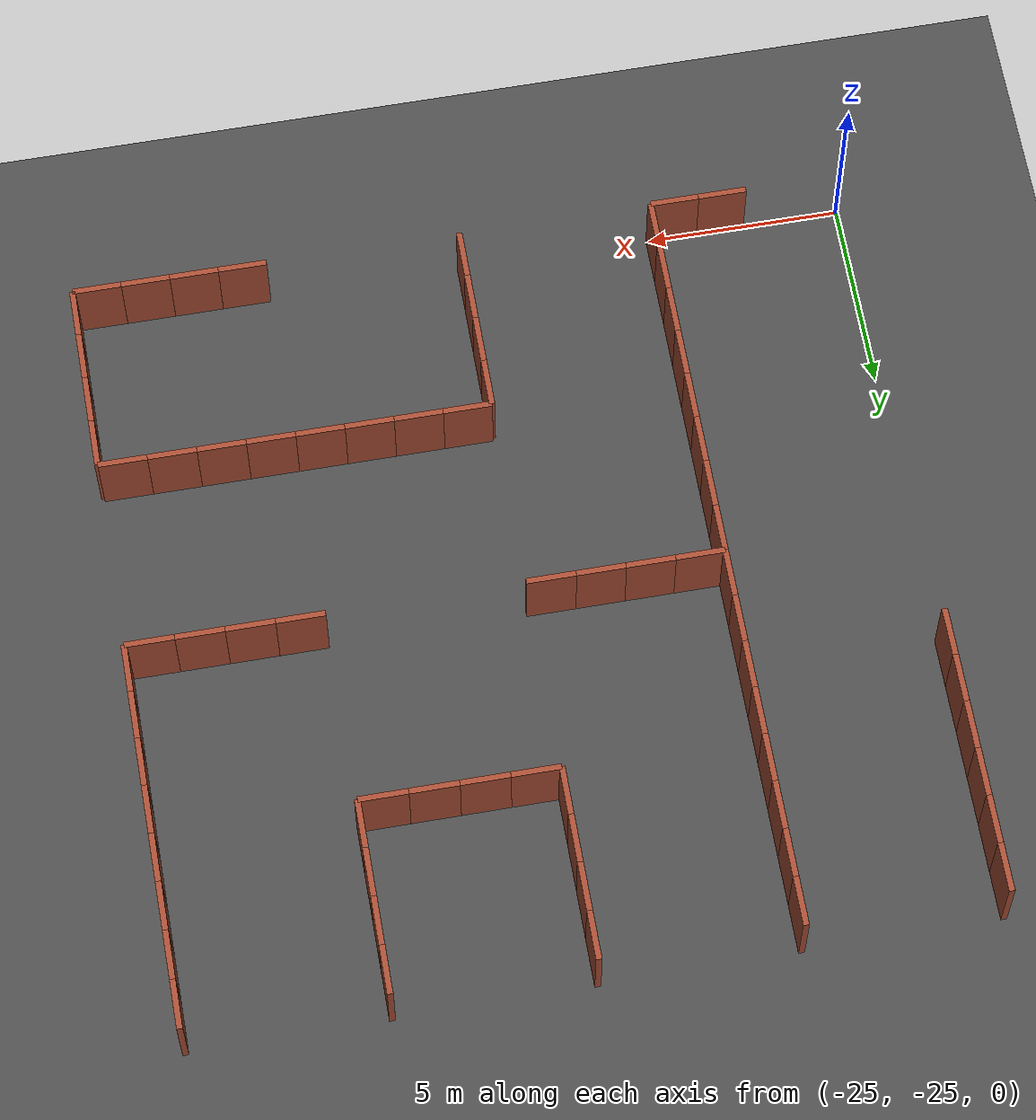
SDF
<sdf version="1.6">
 <world name="default">
  <model name="ground_plane">
   <static>1</static>
   <link name="link">
    <collision name="collision">
     <geometry><plane><normal>0 0 1</normal><size>100 100</size></plane></geometry>
     <surface><friction><ode><mu>100</mu><mu2>50</mu2></ode></friction></surface>
    </collision>
    <visual name="visual">
     <cast_shadows>0</cast_shadows>
     <geometry><plane><normal>0 0 1</normal><size>100 100</size></plane></geometry>
     <material>
      <script><uri>file://media/materials/scripts/gazebo.material</uri><name>Gazebo/Grey</name></script>
     </material>
    </visual>
   </link>
  </model>
  <model name="asphalt_plane">
   <static>1</static>
   <link name="link">
    <collision name="collision"><geometry><box><size>100 100 0.1</size></box></geometry></collision>
    <visual name="visual">
     <cast_shadows>0</cast_shadows>
     <geometry><box><size>100 100 0.1</size></box></geometry>
     <material>
      <script>
       <uri>model://asphalt_plane/materials/scripts</uri>
       <uri>model://asphalt_plane/materials/textures</uri>
       <name>vrc/asphalt</name>
      </script>
     </material>
    </visual>
   </link>
  </model>
  <model name="brick_wall_10_15_horizontal1">
   <pose>-25 -11.875 0 0 -0 1.5708</pose>
   <link name="Wall_0">
    <collision name="Wall_0_Collision">
     <geometry><box><size>1.25 0.15 2</size></box></geometry>
     <pose>0 0 1 0 -0 0</pose>
    </collision>
    <visual name="Wall_0_Visual">
     <pose>0 0 1 0 -0 0</pose>
     <geometry><box><size>1.25 0.15 2</size></box></geometry>
     <material>
      <script><uri>file://media/materials/scripts/gazebo.material</uri><name>Gazebo/Bricks</name></script>
      <ambient>1 1 1 1</ambient>
     </material>
     <meta><layer>0</layer></meta>
    </visual>
   </link>
   <static>1</static>
  </model>
  <model name="brick_wall_10_16_horizontal1">
   <pose>-25 -9.375 0 0 -0 1.5708</pose>
   <link name="Wall_0">
    <collision name="Wall_0_Collision">
     <geometry><box><size>1.25 0.15 2</size></box></geometry>
     <pose>0 0 1 0 -0 0</pose>
    </collision>
    <visual name="Wall_0_Visual">
     <pose>0 0 1 0 -0 0</pose>
     <geometry><box><size>1.25 0.15 2</size></box></geometry>
     <material>
      <script><uri>file://media/materials/scripts/gazebo.material</uri><name>Gazebo/Bricks</name></script>
      <ambient>1 1 1 1</ambient>
     </material>
     <meta><layer>0</layer></meta>
    </visual>
   </link>
   <static>1</static>
  </model>
  <model name="brick_wall_10_16_horizontal2">
   <pose>-25 -10.625 0 0 -0 1.5708</pose>
   <link name="Wall_0">
    <collision name="Wall_0_Collision">
     <geometry><box><size>1.25 0.15 2</size></box></geometry>
     <pose>0 0 1 0 -0 0</pose>
    </collision>
    <visual name="Wall_0_Visual">
     <pose>0 0 1 0 -0 0</pose>
     <geometry><box><size>1.25 0.15 2</size></box></geometry>
     <material>
      <script><uri>file://media/materials/scripts/gazebo.material</uri><name>Gazebo/Bricks</name></script>
      <ambient>1 1 1 1</ambient>
     </material>
     <meta><layer>0</layer></meta>
    </visual>
   </link>
   <static>1</static>
  </model>
  <model name="brick_wall_10_17_horizontal1">
   <pose>-25 -6.875 0 0 -0 1.5708</pose>
   <link name="Wall_0">
    <collision name="Wall_0_Collision">
     <geometry><box><size>1.25 0.15 2</size></box></geometry>
     <pose>0 0 1 0 -0 0</pose>
    </collision>
    <visual name="Wall_0_Visual">
     <pose>0 0 1 0 -0 0</pose>
     <geometry><box><size>1.25 0.15 2</size></box></geometry>
     <material>
      <script><uri>file://media/materials/scripts/gazebo.material</uri><name>Gazebo/Bricks</name></script>
      <ambient>1 1 1 1</ambient>
     </material>
     <meta><layer>0</layer></meta>
    </visual>
   </link>
   <static>1</static>
  </model>
  <model name="brick_wall_10_17_horizontal2">
   <pose>-25 -8.125 0 0 -0 1.5708</pose>
   <link name="Wall_0">
    <collision name="Wall_0_Collision">
     <geometry><box><size>1.25 0.15 2</size></box></geometry>
     <pose>0 0 1 0 -0 0</pose>
    </collision>
    <visual name="Wall_0_Visual">
     <pose>0 0 1 0 -0 0</pose>
     <geometry><box><size>1.25 0.15 2</size></box></geometry>
     <material>
      <script><uri>file://media/materials/scripts/gazebo.material</uri><name>Gazebo/Bricks</name></script>
      <ambient>1 1 1 1</ambient>
     </material>
     <meta><layer>0</layer></meta>
    </visual>
   </link>
   <static>1</static>
  </model>
  <model name="brick_wall_10_18_horizontal2">
   <pose>-25 -5.625 0 0 -0 1.5708</pose>
   <link name="Wall_0">
    <collision name="Wall_0_Collision">
     <geometry><box><size>1.25 0.15 2</size></box></geometry>
     <pose>0 0 1 0 -0 0</pose>
    </collision>
    <visual name="Wall_0_Visual">
     <pose>0 0 1 0 -0 0</pose>
     <geometry><box><size>1.25 0.15 2</size></box></geometry>
     <material>
      <script><uri>file://media/materials/scripts/gazebo.material</uri><name>Gazebo/Bricks</name></script>
      <ambient>1 1 1 1</ambient>
     </material>
     <meta><layer>0</layer></meta>
    </visual>
   </link>
   <static>1</static>
  </model>
  <model name="brick_wall_11_10_vertical1">
   <pose>-21.875 -25 0 0 -0 0</pose>
   <link name="Wall_0">
    <collision name="Wall_0_Collision">
     <geometry><box><size>1.25 0.15 2</size></box></geometry>
     <pose>0 0 1 0 -0 0</pose>
    </collision>
    <visual name="Wall_0_Visual">
     <pose>0 0 1 0 -0 0</pose>
     <geometry><box><size>1.25 0.15 2</size></box></geometry>
     <material>
      <script><uri>file://media/materials/scripts/gazebo.material</uri><name>Gazebo/Bricks</name></script>
      <ambient>1 1 1 1</ambient>
     </material>
     <meta><layer>0</layer></meta>
    </visual>
   </link>
   <static>1</static>
  </model>
  <model name="brick_wall_12_10_vertical2">
   <pose>-20.625 -25 0 0 -0 0</pose>
   <link name="Wall_0">
    <collision name="Wall_0_Collision">
     <geometry><box><size>1.25 0.15 2</size></box></geometry>
     <pose>0 0 1 0 -0 0</pose>
    </collision>
    <visual name="Wall_0_Visual">
     <pose>0 0 1 0 -0 0</pose>
     <geometry><box><size>1.25 0.15 2</size></box></geometry>
     <material>
      <script><uri>file://media/materials/scripts/gazebo.material</uri><name>Gazebo/Bricks</name></script>
      <ambient>1 1 1 1</ambient>
     </material>
     <meta><layer>0</layer></meta>
    </visual>
   </link>
   <static>1</static>
  </model>
  <model name="brick_wall_12_10_horizontal1">
   <pose>-20 -24.375 0 0 -0 1.5708</pose>
   <link name="Wall_0">
    <collision name="Wall_0_Collision">
     <geometry><box><size>1.25 0.15 2</size></box></geometry>
     <pose>0 0 1 0 -0 0</pose>
    </collision>
    <visual name="Wall_0_Visual">
     <pose>0 0 1 0 -0 0</pose>
     <geometry><box><size>1.25 0.15 2</size></box></geometry>
     <material>
      <script><uri>file://media/materials/scripts/gazebo.material</uri><name>Gazebo/Bricks</name></script>
      <ambient>1 1 1 1</ambient>
     </material>
     <meta><layer>0</layer></meta>
    </visual>
   </link>
   <static>1</static>
  </model>
  <model name="brick_wall_12_11_horizontal1">
   <pose>-20 -21.875 0 0 -0 1.5708</pose>
   <link name="Wall_0">
    <collision name="Wall_0_Collision">
     <geometry><box><size>1.25 0.15 2</size></box></geometry>
     <pose>0 0 1 0 -0 0</pose>
    </collision>
    <visual name="Wall_0_Visual">
     <pose>0 0 1 0 -0 0</pose>
     <geometry><box><size>1.25 0.15 2</size></box></geometry>
     <material>
      <script><uri>file://media/materials/scripts/gazebo.material</uri><name>Gazebo/Bricks</name></script>
      <ambient>1 1 1 1</ambient>
     </material>
     <meta><layer>0</layer></meta>
    </visual>
   </link>
   <static>1</static>
  </model>
  <model name="brick_wall_12_11_horizontal2">
   <pose>-20 -23.125 0 0 -0 1.5708</pose>
   <link name="Wall_0">
    <collision name="Wall_0_Collision">
     <geometry><box><size>1.25 0.15 2</size></box></geometry>
     <pose>0 0 1 0 -0 0</pose>
    </collision>
    <visual name="Wall_0_Visual">
     <pose>0 0 1 0 -0 0</pose>
     <geometry><box><size>1.25 0.15 2</size></box></geometry>
     <material>
      <script><uri>file://media/materials/scripts/gazebo.material</uri><name>Gazebo/Bricks</name></script>
      <ambient>1 1 1 1</ambient>
     </material>
     <meta><layer>0</layer></meta>
    </visual>
   </link>
   <static>1</static>
  </model>
  <model name="brick_wall_12_12_horizontal1">
   <pose>-20 -19.375 0 0 -0 1.5708</pose>
   <link name="Wall_0">
    <collision name="Wall_0_Collision">
     <geometry><box><size>1.25 0.15 2</size></box></geometry>
     <pose>0 0 1 0 -0 0</pose>
    </collision>
    <visual name="Wall_0_Visual">
     <pose>0 0 1 0 -0 0</pose>
     <geometry><box><size>1.25 0.15 2</size></box></geometry>
     <material>
      <script><uri>file://media/materials/scripts/gazebo.material</uri><name>Gazebo/Bricks</name></script>
      <ambient>1 1 1 1</ambient>
     </material>
     <meta><layer>0</layer></meta>
    </visual>
   </link>
   <static>1</static>
  </model>
  <model name="brick_wall_12_12_horizontal2">
   <pose>-20 -20.625 0 0 -0 1.5708</pose>
   <link name="Wall_0">
    <collision name="Wall_0_Collision">
     <geometry><box><size>1.25 0.15 2</size></box></geometry>
     <pose>0 0 1 0 -0 0</pose>
    </collision>
    <visual name="Wall_0_Visual">
     <pose>0 0 1 0 -0 0</pose>
     <geometry><box><size>1.25 0.15 2</size></box></geometry>
     <material>
      <script><uri>file://media/materials/scripts/gazebo.material</uri><name>Gazebo/Bricks</name></script>
      <ambient>1 1 1 1</ambient>
     </material>
     <meta><layer>0</layer></meta>
    </visual>
   </link>
   <static>1</static>
  </model>
  <model name="brick_wall_12_13_horizontal1">
   <pose>-20 -16.875 0 0 -0 1.5708</pose>
   <link name="Wall_0">
    <collision name="Wall_0_Collision">
     <geometry><box><size>1.25 0.15 2</size></box></geometry>
     <pose>0 0 1 0 -0 0</pose>
    </collision>
    <visual name="Wall_0_Visual">
     <pose>0 0 1 0 -0 0</pose>
     <geometry><box><size>1.25 0.15 2</size></box></geometry>
     <material>
      <script><uri>file://media/materials/scripts/gazebo.material</uri><name>Gazebo/Bricks</name></script>
      <ambient>1 1 1 1</ambient>
     </material>
     <meta><layer>0</layer></meta>
    </visual>
   </link>
   <static>1</static>
  </model>
  <model name="brick_wall_12_13_horizontal2">
   <pose>-20 -18.125 0 0 -0 1.5708</pose>
   <link name="Wall_0">
    <collision name="Wall_0_Collision">
     <geometry><box><size>1.25 0.15 2</size></box></geometry>
     <pose>0 0 1 0 -0 0</pose>
    </collision>
    <visual name="Wall_0_Visual">
     <pose>0 0 1 0 -0 0</pose>
     <geometry><box><size>1.25 0.15 2</size></box></geometry>
     <material>
      <script><uri>file://media/materials/scripts/gazebo.material</uri><name>Gazebo/Bricks</name></script>
      <ambient>1 1 1 1</ambient>
     </material>
     <meta><layer>0</layer></meta>
    </visual>
   </link>
   <static>1</static>
  </model>
  <model name="brick_wall_12_14_vertical1">
   <pose>-19.375 -15 0 0 -0 0</pose>
   <link name="Wall_0">
    <collision name="Wall_0_Collision">
     <geometry><box><size>1.25 0.15 2</size></box></geometry>
     <pose>0 0 1 0 -0 0</pose>
    </collision>
    <visual name="Wall_0_Visual">
     <pose>0 0 1 0 -0 0</pose>
     <geometry><box><size>1.25 0.15 2</size></box></geometry>
     <material>
      <script><uri>file://media/materials/scripts/gazebo.material</uri><name>Gazebo/Bricks</name></script>
      <ambient>1 1 1 1</ambient>
     </material>
     <meta><layer>0</layer></meta>
    </visual>
   </link>
   <static>1</static>
  </model>
  <model name="brick_wall_12_14_horizontal1">
   <pose>-20 -14.375 0 0 -0 1.5708</pose>
   <link name="Wall_0">
    <collision name="Wall_0_Collision">
     <geometry><box><size>1.25 0.15 2</size></box></geometry>
     <pose>0 0 1 0 -0 0</pose>
    </collision>
    <visual name="Wall_0_Visual">
     <pose>0 0 1 0 -0 0</pose>
     <geometry><box><size>1.25 0.15 2</size></box></geometry>
     <material>
      <script><uri>file://media/materials/scripts/gazebo.material</uri><name>Gazebo/Bricks</name></script>
      <ambient>1 1 1 1</ambient>
     </material>
     <meta><layer>0</layer></meta>
    </visual>
   </link>
   <static>1</static>
  </model>
  <model name="brick_wall_12_14_horizontal2">
   <pose>-20 -15.625 0 0 -0 1.5708</pose>
   <link name="Wall_0">
    <collision name="Wall_0_Collision">
     <geometry><box><size>1.25 0.15 2</size></box></geometry>
     <pose>0 0 1 0 -0 0</pose>
    </collision>
    <visual name="Wall_0_Visual">
     <pose>0 0 1 0 -0 0</pose>
     <geometry><box><size>1.25 0.15 2</size></box></geometry>
     <material>
      <script><uri>file://media/materials/scripts/gazebo.material</uri><name>Gazebo/Bricks</name></script>
      <ambient>1 1 1 1</ambient>
     </material>
     <meta><layer>0</layer></meta>
    </visual>
   </link>
   <static>1</static>
  </model>
  <model name="brick_wall_12_15_horizontal1">
   <pose>-20 -11.875 0 0 -0 1.5708</pose>
   <link name="Wall_0">
    <collision name="Wall_0_Collision">
     <geometry><box><size>1.25 0.15 2</size></box></geometry>
     <pose>0 0 1 0 -0 0</pose>
    </collision>
    <visual name="Wall_0_Visual">
     <pose>0 0 1 0 -0 0</pose>
     <geometry><box><size>1.25 0.15 2</size></box></geometry>
     <material>
      <script><uri>file://media/materials/scripts/gazebo.material</uri><name>Gazebo/Bricks</name></script>
      <ambient>1 1 1 1</ambient>
     </material>
     <meta><layer>0</layer></meta>
    </visual>
   </link>
   <static>1</static>
  </model>
  <model name="brick_wall_12_15_horizontal2">
   <pose>-20 -13.125 0 0 -0 1.5708</pose>
   <link name="Wall_0">
    <collision name="Wall_0_Collision">
     <geometry><box><size>1.25 0.15 2</size></box></geometry>
     <pose>0 0 1 0 -0 0</pose>
    </collision>
    <visual name="Wall_0_Visual">
     <pose>0 0 1 0 -0 0</pose>
     <geometry><box><size>1.25 0.15 2</size></box></geometry>
     <material>
      <script><uri>file://media/materials/scripts/gazebo.material</uri><name>Gazebo/Bricks</name></script>
      <ambient>1 1 1 1</ambient>
     </material>
     <meta><layer>0</layer></meta>
    </visual>
   </link>
   <static>1</static>
  </model>
  <model name="brick_wall_12_16_horizontal1">
   <pose>-20 -9.375 0 0 -0 1.5708</pose>
   <link name="Wall_0">
    <collision name="Wall_0_Collision">
     <geometry><box><size>1.25 0.15 2</size></box></geometry>
     <pose>0 0 1 0 -0 0</pose>
    </collision>
    <visual name="Wall_0_Visual">
     <pose>0 0 1 0 -0 0</pose>
     <geometry><box><size>1.25 0.15 2</size></box></geometry>
     <material>
      <script><uri>file://media/materials/scripts/gazebo.material</uri><name>Gazebo/Bricks</name></script>
      <ambient>1 1 1 1</ambient>
     </material>
     <meta><layer>0</layer></meta>
    </visual>
   </link>
   <static>1</static>
  </model>
  <model name="brick_wall_12_16_horizontal2">
   <pose>-20 -10.625 0 0 -0 1.5708</pose>
   <link name="Wall_0">
    <collision name="Wall_0_Collision">
     <geometry><box><size>1.25 0.15 2</size></box></geometry>
     <pose>0 0 1 0 -0 0</pose>
    </collision>
    <visual name="Wall_0_Visual">
     <pose>0 0 1 0 -0 0</pose>
     <geometry><box><size>1.25 0.15 2</size></box></geometry>
     <material>
      <script><uri>file://media/materials/scripts/gazebo.material</uri><name>Gazebo/Bricks</name></script>
      <ambient>1 1 1 1</ambient>
     </material>
     <meta><layer>0</layer></meta>
    </visual>
   </link>
   <static>1</static>
  </model>
  <model name="brick_wall_12_17_horizontal1">
   <pose>-20 -6.875 0 0 -0 1.5708</pose>
   <link name="Wall_0">
    <collision name="Wall_0_Collision">
     <geometry><box><size>1.25 0.15 2</size></box></geometry>
     <pose>0 0 1 0 -0 0</pose>
    </collision>
    <visual name="Wall_0_Visual">
     <pose>0 0 1 0 -0 0</pose>
     <geometry><box><size>1.25 0.15 2</size></box></geometry>
     <material>
      <script><uri>file://media/materials/scripts/gazebo.material</uri><name>Gazebo/Bricks</name></script>
      <ambient>1 1 1 1</ambient>
     </material>
     <meta><layer>0</layer></meta>
    </visual>
   </link>
   <static>1</static>
  </model>
  <model name="brick_wall_12_17_horizontal2">
   <pose>-20 -8.125 0 0 -0 1.5708</pose>
   <link name="Wall_0">
    <collision name="Wall_0_Collision">
     <geometry><box><size>1.25 0.15 2</size></box></geometry>
     <pose>0 0 1 0 -0 0</pose>
    </collision>
    <visual name="Wall_0_Visual">
     <pose>0 0 1 0 -0 0</pose>
     <geometry><box><size>1.25 0.15 2</size></box></geometry>
     <material>
      <script><uri>file://media/materials/scripts/gazebo.material</uri><name>Gazebo/Bricks</name></script>
      <ambient>1 1 1 1</ambient>
     </material>
     <meta><layer>0</layer></meta>
    </visual>
   </link>
   <static>1</static>
  </model>
  <model name="brick_wall_12_18_horizontal2">
   <pose>-20 -5.625 0 0 -0 1.5708</pose>
   <link name="Wall_0">
    <collision name="Wall_0_Collision">
     <geometry><box><size>1.25 0.15 2</size></box></geometry>
     <pose>0 0 1 0 -0 0</pose>
    </collision>
    <visual name="Wall_0_Visual">
     <pose>0 0 1 0 -0 0</pose>
     <geometry><box><size>1.25 0.15 2</size></box></geometry>
     <material>
      <script><uri>file://media/materials/scripts/gazebo.material</uri><name>Gazebo/Bricks</name></script>
      <ambient>1 1 1 1</ambient>
     </material>
     <meta><layer>0</layer></meta>
    </visual>
   </link>
   <static>1</static>
  </model>
  <model name="brick_wall_13_14_vertical1">
   <pose>-16.875 -15 0 0 -0 0</pose>
   <link name="Wall_0">
    <collision name="Wall_0_Collision">
     <geometry><box><size>1.25 0.15 2</size></box></geometry>
     <pose>0 0 1 0 -0 0</pose>
    </collision>
    <visual name="Wall_0_Visual">
     <pose>0 0 1 0 -0 0</pose>
     <geometry><box><size>1.25 0.15 2</size></box></geometry>
     <material>
      <script><uri>file://media/materials/scripts/gazebo.material</uri><name>Gazebo/Bricks</name></script>
      <ambient>1 1 1 1</ambient>
     </material>
     <meta><layer>0</layer></meta>
    </visual>
   </link>
   <static>1</static>
  </model>
  <model name="brick_wall_13_14_vertical2">
   <pose>-18.125 -15 0 0 -0 0</pose>
   <link name="Wall_0">
    <collision name="Wall_0_Collision">
     <geometry><box><size>1.25 0.15 2</size></box></geometry>
     <pose>0 0 1 0 -0 0</pose>
    </collision>
    <visual name="Wall_0_Visual">
     <pose>0 0 1 0 -0 0</pose>
     <geometry><box><size>1.25 0.15 2</size></box></geometry>
     <material>
      <script><uri>file://media/materials/scripts/gazebo.material</uri><name>Gazebo/Bricks</name></script>
      <ambient>1 1 1 1</ambient>
     </material>
     <meta><layer>0</layer></meta>
    </visual>
   </link>
   <static>1</static>
  </model>
  <model name="brick_wall_14_10_horizontal1">
   <pose>-15 -24.375 0 0 -0 1.5708</pose>
   <link name="Wall_0">
    <collision name="Wall_0_Collision">
     <geometry><box><size>1.25 0.15 2</size></box></geometry>
     <pose>0 0 1 0 -0 0</pose>
    </collision>
    <visual name="Wall_0_Visual">
     <pose>0 0 1 0 -0 0</pose>
     <geometry><box><size>1.25 0.15 2</size></box></geometry>
     <material>
      <script><uri>file://media/materials/scripts/gazebo.material</uri><name>Gazebo/Bricks</name></script>
      <ambient>1 1 1 1</ambient>
     </material>
     <meta><layer>0</layer></meta>
    </visual>
   </link>
   <static>1</static>
  </model>
  <model name="brick_wall_14_11_horizontal1">
   <pose>-15 -21.875 0 0 -0 1.5708</pose>
   <link name="Wall_0">
    <collision name="Wall_0_Collision">
     <geometry><box><size>1.25 0.15 2</size></box></geometry>
     <pose>0 0 1 0 -0 0</pose>
    </collision>
    <visual name="Wall_0_Visual">
     <pose>0 0 1 0 -0 0</pose>
     <geometry><box><size>1.25 0.15 2</size></box></geometry>
     <material>
      <script><uri>file://media/materials/scripts/gazebo.material</uri><name>Gazebo/Bricks</name></script>
      <ambient>1 1 1 1</ambient>
     </material>
     <meta><layer>0</layer></meta>
    </visual>
   </link>
   <static>1</static>
  </model>
  <model name="brick_wall_14_11_horizontal2">
   <pose>-15 -23.125 0 0 -0 1.5708</pose>
   <link name="Wall_0">
    <collision name="Wall_0_Collision">
     <geometry><box><size>1.25 0.15 2</size></box></geometry>
     <pose>0 0 1 0 -0 0</pose>
    </collision>
    <visual name="Wall_0_Visual">
     <pose>0 0 1 0 -0 0</pose>
     <geometry><box><size>1.25 0.15 2</size></box></geometry>
     <material>
      <script><uri>file://media/materials/scripts/gazebo.material</uri><name>Gazebo/Bricks</name></script>
      <ambient>1 1 1 1</ambient>
     </material>
     <meta><layer>0</layer></meta>
    </visual>
   </link>
   <static>1</static>
  </model>
  <model name="brick_wall_14_12_vertical1">
   <pose>-14.375 -20 0 0 -0 0</pose>
   <link name="Wall_0">
    <collision name="Wall_0_Collision">
     <geometry><box><size>1.25 0.15 2</size></box></geometry>
     <pose>0 0 1 0 -0 0</pose>
    </collision>
    <visual name="Wall_0_Visual">
     <pose>0 0 1 0 -0 0</pose>
     <geometry><box><size>1.25 0.15 2</size></box></geometry>
     <material>
      <script><uri>file://media/materials/scripts/gazebo.material</uri><name>Gazebo/Bricks</name></script>
      <ambient>1 1 1 1</ambient>
     </material>
     <meta><layer>0</layer></meta>
    </visual>
   </link>
   <static>1</static>
  </model>
  <model name="brick_wall_14_12_horizontal2">
   <pose>-15 -20.625 0 0 -0 1.5708</pose>
   <link name="Wall_0">
    <collision name="Wall_0_Collision">
     <geometry><box><size>1.25 0.15 2</size></box></geometry>
     <pose>0 0 1 0 -0 0</pose>
    </collision>
    <visual name="Wall_0_Visual">
     <pose>0 0 1 0 -0 0</pose>
     <geometry><box><size>1.25 0.15 2</size></box></geometry>
     <material>
      <script><uri>file://media/materials/scripts/gazebo.material</uri><name>Gazebo/Bricks</name></script>
      <ambient>1 1 1 1</ambient>
     </material>
     <meta><layer>0</layer></meta>
    </visual>
   </link>
   <static>1</static>
  </model>
  <model name="brick_wall_14_14_vertical2">
   <pose>-15.625 -15 0 0 -0 0</pose>
   <link name="Wall_0">
    <collision name="Wall_0_Collision">
     <geometry><box><size>1.25 0.15 2</size></box></geometry>
     <pose>0 0 1 0 -0 0</pose>
    </collision>
    <visual name="Wall_0_Visual">
     <pose>0 0 1 0 -0 0</pose>
     <geometry><box><size>1.25 0.15 2</size></box></geometry>
     <material>
      <script><uri>file://media/materials/scripts/gazebo.material</uri><name>Gazebo/Bricks</name></script>
      <ambient>1 1 1 1</ambient>
     </material>
     <meta><layer>0</layer></meta>
    </visual>
   </link>
   <static>1</static>
  </model>
  <model name="brick_wall_14_16_vertical1">
   <pose>-14.375 -10 0 0 -0 0</pose>
   <link name="Wall_0">
    <collision name="Wall_0_Collision">
     <geometry><box><size>1.25 0.15 2</size></box></geometry>
     <pose>0 0 1 0 -0 0</pose>
    </collision>
    <visual name="Wall_0_Visual">
     <pose>0 0 1 0 -0 0</pose>
     <geometry><box><size>1.25 0.15 2</size></box></geometry>
     <material>
      <script><uri>file://media/materials/scripts/gazebo.material</uri><name>Gazebo/Bricks</name></script>
      <ambient>1 1 1 1</ambient>
     </material>
     <meta><layer>0</layer></meta>
    </visual>
   </link>
   <static>1</static>
  </model>
  <model name="brick_wall_14_16_horizontal1">
   <pose>-15 -9.375 0 0 -0 1.5708</pose>
   <link name="Wall_0">
    <collision name="Wall_0_Collision">
     <geometry><box><size>1.25 0.15 2</size></box></geometry>
     <pose>0 0 1 0 -0 0</pose>
    </collision>
    <visual name="Wall_0_Visual">
     <pose>0 0 1 0 -0 0</pose>
     <geometry><box><size>1.25 0.15 2</size></box></geometry>
     <material>
      <script><uri>file://media/materials/scripts/gazebo.material</uri><name>Gazebo/Bricks</name></script>
      <ambient>1 1 1 1</ambient>
     </material>
     <meta><layer>0</layer></meta>
    </visual>
   </link>
   <static>1</static>
  </model>
  <model name="brick_wall_14_17_horizontal1">
   <pose>-15 -6.875 0 0 -0 1.5708</pose>
   <link name="Wall_0">
    <collision name="Wall_0_Collision">
     <geometry><box><size>1.25 0.15 2</size></box></geometry>
     <pose>0 0 1 0 -0 0</pose>
    </collision>
    <visual name="Wall_0_Visual">
     <pose>0 0 1 0 -0 0</pose>
     <geometry><box><size>1.25 0.15 2</size></box></geometry>
     <material>
      <script><uri>file://media/materials/scripts/gazebo.material</uri><name>Gazebo/Bricks</name></script>
      <ambient>1 1 1 1</ambient>
     </material>
     <meta><layer>0</layer></meta>
    </visual>
   </link>
   <static>1</static>
  </model>
  <model name="brick_wall_14_17_horizontal2">
   <pose>-15 -8.125 0 0 -0 1.5708</pose>
   <link name="Wall_0">
    <collision name="Wall_0_Collision">
     <geometry><box><size>1.25 0.15 2</size></box></geometry>
     <pose>0 0 1 0 -0 0</pose>
    </collision>
    <visual name="Wall_0_Visual">
     <pose>0 0 1 0 -0 0</pose>
     <geometry><box><size>1.25 0.15 2</size></box></geometry>
     <material>
      <script><uri>file://media/materials/scripts/gazebo.material</uri><name>Gazebo/Bricks</name></script>
      <ambient>1 1 1 1</ambient>
     </material>
     <meta><layer>0</layer></meta>
    </visual>
   </link>
   <static>1</static>
  </model>
  <model name="brick_wall_14_18_horizontal2">
   <pose>-15 -5.625 0 0 -0 1.5708</pose>
   <link name="Wall_0">
    <collision name="Wall_0_Collision">
     <geometry><box><size>1.25 0.15 2</size></box></geometry>
     <pose>0 0 1 0 -0 0</pose>
    </collision>
    <visual name="Wall_0_Visual">
     <pose>0 0 1 0 -0 0</pose>
     <geometry><box><size>1.25 0.15 2</size></box></geometry>
     <material>
      <script><uri>file://media/materials/scripts/gazebo.material</uri><name>Gazebo/Bricks</name></script>
      <ambient>1 1 1 1</ambient>
     </material>
     <meta><layer>0</layer></meta>
    </visual>
   </link>
   <static>1</static>
  </model>
  <model name="brick_wall_15_12_vertical1">
   <pose>-11.875 -20 0 0 -0 0</pose>
   <link name="Wall_0">
    <collision name="Wall_0_Collision">
     <geometry><box><size>1.25 0.15 2</size></box></geometry>
     <pose>0 0 1 0 -0 0</pose>
    </collision>
    <visual name="Wall_0_Visual">
     <pose>0 0 1 0 -0 0</pose>
     <geometry><box><size>1.25 0.15 2</size></box></geometry>
     <material>
      <script><uri>file://media/materials/scripts/gazebo.material</uri><name>Gazebo/Bricks</name></script>
      <ambient>1 1 1 1</ambient>
     </material>
     <meta><layer>0</layer></meta>
    </visual>
   </link>
   <static>1</static>
  </model>
  <model name="brick_wall_15_12_vertical2">
   <pose>-13.125 -20 0 0 -0 0</pose>
   <link name="Wall_0">
    <collision name="Wall_0_Collision">
     <geometry><box><size>1.25 0.15 2</size></box></geometry>
     <pose>0 0 1 0 -0 0</pose>
    </collision>
    <visual name="Wall_0_Visual">
     <pose>0 0 1 0 -0 0</pose>
     <geometry><box><size>1.25 0.15 2</size></box></geometry>
     <material>
      <script><uri>file://media/materials/scripts/gazebo.material</uri><name>Gazebo/Bricks</name></script>
      <ambient>1 1 1 1</ambient>
     </material>
     <meta><layer>0</layer></meta>
    </visual>
   </link>
   <static>1</static>
  </model>
  <model name="brick_wall_15_16_vertical1">
   <pose>-11.875 -10 0 0 -0 0</pose>
   <link name="Wall_0">
    <collision name="Wall_0_Collision">
     <geometry><box><size>1.25 0.15 2</size></box></geometry>
     <pose>0 0 1 0 -0 0</pose>
    </collision>
    <visual name="Wall_0_Visual">
     <pose>0 0 1 0 -0 0</pose>
     <geometry><box><size>1.25 0.15 2</size></box></geometry>
     <material>
      <script><uri>file://media/materials/scripts/gazebo.material</uri><name>Gazebo/Bricks</name></script>
      <ambient>1 1 1 1</ambient>
     </material>
     <meta><layer>0</layer></meta>
    </visual>
   </link>
   <static>1</static>
  </model>
  <model name="brick_wall_15_16_vertical2">
   <pose>-13.125 -10 0 0 -0 0</pose>
   <link name="Wall_0">
    <collision name="Wall_0_Collision">
     <geometry><box><size>1.25 0.15 2</size></box></geometry>
     <pose>0 0 1 0 -0 0</pose>
    </collision>
    <visual name="Wall_0_Visual">
     <pose>0 0 1 0 -0 0</pose>
     <geometry><box><size>1.25 0.15 2</size></box></geometry>
     <material>
      <script><uri>file://media/materials/scripts/gazebo.material</uri><name>Gazebo/Bricks</name></script>
      <ambient>1 1 1 1</ambient>
     </material>
     <meta><layer>0</layer></meta>
    </visual>
   </link>
   <static>1</static>
  </model>
  <model name="brick_wall_16_10_vertical1">
   <pose>-9.375 -25 0 0 -0 0</pose>
   <link name="Wall_0">
    <collision name="Wall_0_Collision">
     <geometry><box><size>1.25 0.15 2</size></box></geometry>
     <pose>0 0 1 0 -0 0</pose>
    </collision>
    <visual name="Wall_0_Visual">
     <pose>0 0 1 0 -0 0</pose>
     <geometry><box><size>1.25 0.15 2</size></box></geometry>
     <material>
      <script><uri>file://media/materials/scripts/gazebo.material</uri><name>Gazebo/Bricks</name></script>
      <ambient>1 1 1 1</ambient>
     </material>
     <meta><layer>0</layer></meta>
    </visual>
   </link>
   <static>1</static>
  </model>
  <model name="brick_wall_16_12_vertical1">
   <pose>-9.375 -20 0 0 -0 0</pose>
   <link name="Wall_0">
    <collision name="Wall_0_Collision">
     <geometry><box><size>1.25 0.15 2</size></box></geometry>
     <pose>0 0 1 0 -0 0</pose>
    </collision>
    <visual name="Wall_0_Visual">
     <pose>0 0 1 0 -0 0</pose>
     <geometry><box><size>1.25 0.15 2</size></box></geometry>
     <material>
      <script><uri>file://media/materials/scripts/gazebo.material</uri><name>Gazebo/Bricks</name></script>
      <ambient>1 1 1 1</ambient>
     </material>
     <meta><layer>0</layer></meta>
    </visual>
   </link>
   <static>1</static>
  </model>
  <model name="brick_wall_16_12_vertical2">
   <pose>-10.625 -20 0 0 -0 0</pose>
   <link name="Wall_0">
    <collision name="Wall_0_Collision">
     <geometry><box><size>1.25 0.15 2</size></box></geometry>
     <pose>0 0 1 0 -0 0</pose>
    </collision>
    <visual name="Wall_0_Visual">
     <pose>0 0 1 0 -0 0</pose>
     <geometry><box><size>1.25 0.15 2</size></box></geometry>
     <material>
      <script><uri>file://media/materials/scripts/gazebo.material</uri><name>Gazebo/Bricks</name></script>
      <ambient>1 1 1 1</ambient>
     </material>
     <meta><layer>0</layer></meta>
    </visual>
   </link>
   <static>1</static>
  </model>
  <model name="brick_wall_16_14_vertical1">
   <pose>-9.375 -15 0 0 -0 0</pose>
   <link name="Wall_0">
    <collision name="Wall_0_Collision">
     <geometry><box><size>1.25 0.15 2</size></box></geometry>
     <pose>0 0 1 0 -0 0</pose>
    </collision>
    <visual name="Wall_0_Visual">
     <pose>0 0 1 0 -0 0</pose>
     <geometry><box><size>1.25 0.15 2</size></box></geometry>
     <material>
      <script><uri>file://media/materials/scripts/gazebo.material</uri><name>Gazebo/Bricks</name></script>
      <ambient>1 1 1 1</ambient>
     </material>
     <meta><layer>0</layer></meta>
    </visual>
   </link>
   <static>1</static>
  </model>
  <model name="brick_wall_16_16_vertical2">
   <pose>-10.625 -10 0 0 -0 0</pose>
   <link name="Wall_0">
    <collision name="Wall_0_Collision">
     <geometry><box><size>1.25 0.15 2</size></box></geometry>
     <pose>0 0 1 0 -0 0</pose>
    </collision>
    <visual name="Wall_0_Visual">
     <pose>0 0 1 0 -0 0</pose>
     <geometry><box><size>1.25 0.15 2</size></box></geometry>
     <material>
      <script><uri>file://media/materials/scripts/gazebo.material</uri><name>Gazebo/Bricks</name></script>
      <ambient>1 1 1 1</ambient>
     </material>
     <meta><layer>0</layer></meta>
    </visual>
   </link>
   <static>1</static>
  </model>
  <model name="brick_wall_16_16_horizontal1">
   <pose>-10 -9.375 0 0 -0 1.5708</pose>
   <link name="Wall_0">
    <collision name="Wall_0_Collision">
     <geometry><box><size>1.25 0.15 2</size></box></geometry>
     <pose>0 0 1 0 -0 0</pose>
    </collision>
    <visual name="Wall_0_Visual">
     <pose>0 0 1 0 -0 0</pose>
     <geometry><box><size>1.25 0.15 2</size></box></geometry>
     <material>
      <script><uri>file://media/materials/scripts/gazebo.material</uri><name>Gazebo/Bricks</name></script>
      <ambient>1 1 1 1</ambient>
     </material>
     <meta><layer>0</layer></meta>
    </visual>
   </link>
   <static>1</static>
  </model>
  <model name="brick_wall_16_17_horizontal1">
   <pose>-10 -6.875 0 0 -0 1.5708</pose>
   <link name="Wall_0">
    <collision name="Wall_0_Collision">
     <geometry><box><size>1.25 0.15 2</size></box></geometry>
     <pose>0 0 1 0 -0 0</pose>
    </collision>
    <visual name="Wall_0_Visual">
     <pose>0 0 1 0 -0 0</pose>
     <geometry><box><size>1.25 0.15 2</size></box></geometry>
     <material>
      <script><uri>file://media/materials/scripts/gazebo.material</uri><name>Gazebo/Bricks</name></script>
      <ambient>1 1 1 1</ambient>
     </material>
     <meta><layer>0</layer></meta>
    </visual>
   </link>
   <static>1</static>
  </model>
  <model name="brick_wall_16_17_horizontal2">
   <pose>-10 -8.125 0 0 -0 1.5708</pose>
   <link name="Wall_0">
    <collision name="Wall_0_Collision">
     <geometry><box><size>1.25 0.15 2</size></box></geometry>
     <pose>0 0 1 0 -0 0</pose>
    </collision>
    <visual name="Wall_0_Visual">
     <pose>0 0 1 0 -0 0</pose>
     <geometry><box><size>1.25 0.15 2</size></box></geometry>
     <material>
      <script><uri>file://media/materials/scripts/gazebo.material</uri><name>Gazebo/Bricks</name></script>
      <ambient>1 1 1 1</ambient>
     </material>
     <meta><layer>0</layer></meta>
    </visual>
   </link>
   <static>1</static>
  </model>
  <model name="brick_wall_16_18_horizontal2">
   <pose>-10 -5.625 0 0 -0 1.5708</pose>
   <link name="Wall_0">
    <collision name="Wall_0_Collision">
     <geometry><box><size>1.25 0.15 2</size></box></geometry>
     <pose>0 0 1 0 -0 0</pose>
    </collision>
    <visual name="Wall_0_Visual">
     <pose>0 0 1 0 -0 0</pose>
     <geometry><box><size>1.25 0.15 2</size></box></geometry>
     <material>
      <script><uri>file://media/materials/scripts/gazebo.material</uri><name>Gazebo/Bricks</name></script>
      <ambient>1 1 1 1</ambient>
     </material>
     <meta><layer>0</layer></meta>
    </visual>
   </link>
   <static>1</static>
  </model>
  <model name="brick_wall_17_10_vertical1">
   <pose>-6.875 -25 0 0 -0 0</pose>
   <link name="Wall_0">
    <collision name="Wall_0_Collision">
     <geometry><box><size>1.25 0.15 2</size></box></geometry>
     <pose>0 0 1 0 -0 0</pose>
    </collision>
    <visual name="Wall_0_Visual">
     <pose>0 0 1 0 -0 0</pose>
     <geometry><box><size>1.25 0.15 2</size></box></geometry>
     <material>
      <script><uri>file://media/materials/scripts/gazebo.material</uri><name>Gazebo/Bricks</name></script>
      <ambient>1 1 1 1</ambient>
     </material>
     <meta><layer>0</layer></meta>
    </visual>
   </link>
   <static>1</static>
  </model>
  <model name="brick_wall_17_10_vertical2">
   <pose>-8.125 -25 0 0 -0 0</pose>
   <link name="Wall_0">
    <collision name="Wall_0_Collision">
     <geometry><box><size>1.25 0.15 2</size></box></geometry>
     <pose>0 0 1 0 -0 0</pose>
    </collision>
    <visual name="Wall_0_Visual">
     <pose>0 0 1 0 -0 0</pose>
     <geometry><box><size>1.25 0.15 2</size></box></geometry>
     <material>
      <script><uri>file://media/materials/scripts/gazebo.material</uri><name>Gazebo/Bricks</name></script>
      <ambient>1 1 1 1</ambient>
     </material>
     <meta><layer>0</layer></meta>
    </visual>
   </link>
   <static>1</static>
  </model>
  <model name="brick_wall_17_12_vertical1">
   <pose>-6.875 -20 0 0 -0 0</pose>
   <link name="Wall_0">
    <collision name="Wall_0_Collision">
     <geometry><box><size>1.25 0.15 2</size></box></geometry>
     <pose>0 0 1 0 -0 0</pose>
    </collision>
    <visual name="Wall_0_Visual">
     <pose>0 0 1 0 -0 0</pose>
     <geometry><box><size>1.25 0.15 2</size></box></geometry>
     <material>
      <script><uri>file://media/materials/scripts/gazebo.material</uri><name>Gazebo/Bricks</name></script>
      <ambient>1 1 1 1</ambient>
     </material>
     <meta><layer>0</layer></meta>
    </visual>
   </link>
   <static>1</static>
  </model>
  <model name="brick_wall_17_12_vertical2">
   <pose>-8.125 -20 0 0 -0 0</pose>
   <link name="Wall_0">
    <collision name="Wall_0_Collision">
     <geometry><box><size>1.25 0.15 2</size></box></geometry>
     <pose>0 0 1 0 -0 0</pose>
    </collision>
    <visual name="Wall_0_Visual">
     <pose>0 0 1 0 -0 0</pose>
     <geometry><box><size>1.25 0.15 2</size></box></geometry>
     <material>
      <script><uri>file://media/materials/scripts/gazebo.material</uri><name>Gazebo/Bricks</name></script>
      <ambient>1 1 1 1</ambient>
     </material>
     <meta><layer>0</layer></meta>
    </visual>
   </link>
   <static>1</static>
  </model>
  <model name="brick_wall_17_14_vertical1">
   <pose>-6.875 -15 0 0 -0 0</pose>
   <link name="Wall_0">
    <collision name="Wall_0_Collision">
     <geometry><box><size>1.25 0.15 2</size></box></geometry>
     <pose>0 0 1 0 -0 0</pose>
    </collision>
    <visual name="Wall_0_Visual">
     <pose>0 0 1 0 -0 0</pose>
     <geometry><box><size>1.25 0.15 2</size></box></geometry>
     <material>
      <script><uri>file://media/materials/scripts/gazebo.material</uri><name>Gazebo/Bricks</name></script>
      <ambient>1 1 1 1</ambient>
     </material>
     <meta><layer>0</layer></meta>
    </visual>
   </link>
   <static>1</static>
  </model>
  <model name="brick_wall_17_14_vertical2">
   <pose>-8.125 -15 0 0 -0 0</pose>
   <link name="Wall_0">
    <collision name="Wall_0_Collision">
     <geometry><box><size>1.25 0.15 2</size></box></geometry>
     <pose>0 0 1 0 -0 0</pose>
    </collision>
    <visual name="Wall_0_Visual">
     <pose>0 0 1 0 -0 0</pose>
     <geometry><box><size>1.25 0.15 2</size></box></geometry>
     <material>
      <script><uri>file://media/materials/scripts/gazebo.material</uri><name>Gazebo/Bricks</name></script>
      <ambient>1 1 1 1</ambient>
     </material>
     <meta><layer>0</layer></meta>
    </visual>
   </link>
   <static>1</static>
  </model>
  <model name="brick_wall_18_10_vertical2">
   <pose>-5.625 -25 0 0 -0 0</pose>
   <link name="Wall_0">
    <collision name="Wall_0_Collision">
     <geometry><box><size>1.25 0.15 2</size></box></geometry>
     <pose>0 0 1 0 -0 0</pose>
    </collision>
    <visual name="Wall_0_Visual">
     <pose>0 0 1 0 -0 0</pose>
     <geometry><box><size>1.25 0.15 2</size></box></geometry>
     <material>
      <script><uri>file://media/materials/scripts/gazebo.material</uri><name>Gazebo/Bricks</name></script>
      <ambient>1 1 1 1</ambient>
     </material>
     <meta><layer>0</layer></meta>
    </visual>
   </link>
   <static>1</static>
  </model>
  <model name="brick_wall_18_10_horizontal1">
   <pose>-5 -24.375 0 0 -0 1.5708</pose>
   <link name="Wall_0">
    <collision name="Wall_0_Collision">
     <geometry><box><size>1.25 0.15 2</size></box></geometry>
     <pose>0 0 1 0 -0 0</pose>
    </collision>
    <visual name="Wall_0_Visual">
     <pose>0 0 1 0 -0 0</pose>
     <geometry><box><size>1.25 0.15 2</size></box></geometry>
     <material>
      <script><uri>file://media/materials/scripts/gazebo.material</uri><name>Gazebo/Bricks</name></script>
      <ambient>1 1 1 1</ambient>
     </material>
     <meta><layer>0</layer></meta>
    </visual>
   </link>
   <static>1</static>
  </model>
  <model name="brick_wall_18_11_horizontal1">
   <pose>-5 -21.875 0 0 -0 1.5708</pose>
   <link name="Wall_0">
    <collision name="Wall_0_Collision">
     <geometry><box><size>1.25 0.15 2</size></box></geometry>
     <pose>0 0 1 0 -0 0</pose>
    </collision>
    <visual name="Wall_0_Visual">
     <pose>0 0 1 0 -0 0</pose>
     <geometry><box><size>1.25 0.15 2</size></box></geometry>
     <material>
      <script><uri>file://media/materials/scripts/gazebo.material</uri><name>Gazebo/Bricks</name></script>
      <ambient>1 1 1 1</ambient>
     </material>
     <meta><layer>0</layer></meta>
    </visual>
   </link>
   <static>1</static>
  </model>
  <model name="brick_wall_18_11_horizontal2">
   <pose>-5 -23.125 0 0 -0 1.5708</pose>
   <link name="Wall_0">
    <collision name="Wall_0_Collision">
     <geometry><box><size>1.25 0.15 2</size></box></geometry>
     <pose>0 0 1 0 -0 0</pose>
    </collision>
    <visual name="Wall_0_Visual">
     <pose>0 0 1 0 -0 0</pose>
     <geometry><box><size>1.25 0.15 2</size></box></geometry>
     <material>
      <script><uri>file://media/materials/scripts/gazebo.material</uri><name>Gazebo/Bricks</name></script>
      <ambient>1 1 1 1</ambient>
     </material>
     <meta><layer>0</layer></meta>
    </visual>
   </link>
   <static>1</static>
  </model>
  <model name="brick_wall_18_12_vertical2">
   <pose>-5.625 -20 0 0 -0 0</pose>
   <link name="Wall_0">
    <collision name="Wall_0_Collision">
     <geometry><box><size>1.25 0.15 2</size></box></geometry>
     <pose>0 0 1 0 -0 0</pose>
    </collision>
    <visual name="Wall_0_Visual">
     <pose>0 0 1 0 -0 0</pose>
     <geometry><box><size>1.25 0.15 2</size></box></geometry>
     <material>
      <script><uri>file://media/materials/scripts/gazebo.material</uri><name>Gazebo/Bricks</name></script>
      <ambient>1 1 1 1</ambient>
     </material>
     <meta><layer>0</layer></meta>
    </visual>
   </link>
   <static>1</static>
  </model>
  <model name="brick_wall_18_12_horizontal2">
   <pose>-5 -20.625 0 0 -0 1.5708</pose>
   <link name="Wall_0">
    <collision name="Wall_0_Collision">
     <geometry><box><size>1.25 0.15 2</size></box></geometry>
     <pose>0 0 1 0 -0 0</pose>
    </collision>
    <visual name="Wall_0_Visual">
     <pose>0 0 1 0 -0 0</pose>
     <geometry><box><size>1.25 0.15 2</size></box></geometry>
     <material>
      <script><uri>file://media/materials/scripts/gazebo.material</uri><name>Gazebo/Bricks</name></script>
      <ambient>1 1 1 1</ambient>
     </material>
     <meta><layer>0</layer></meta>
    </visual>
   </link>
   <static>1</static>
  </model>
  <model name="brick_wall_18_14_vertical2">
   <pose>-5.625 -15 0 0 -0 0</pose>
   <link name="Wall_0">
    <collision name="Wall_0_Collision">
     <geometry><box><size>1.25 0.15 2</size></box></geometry>
     <pose>0 0 1 0 -0 0</pose>
    </collision>
    <visual name="Wall_0_Visual">
     <pose>0 0 1 0 -0 0</pose>
     <geometry><box><size>1.25 0.15 2</size></box></geometry>
     <material>
      <script><uri>file://media/materials/scripts/gazebo.material</uri><name>Gazebo/Bricks</name></script>
      <ambient>1 1 1 1</ambient>
     </material>
     <meta><layer>0</layer></meta>
    </visual>
   </link>
   <static>1</static>
  </model>
  <model name="brick_wall_18_14_horizontal1">
   <pose>-5 -14.375 0 0 -0 1.5708</pose>
   <link name="Wall_0">
    <collision name="Wall_0_Collision">
     <geometry><box><size>1.25 0.15 2</size></box></geometry>
     <pose>0 0 1 0 -0 0</pose>
    </collision>
    <visual name="Wall_0_Visual">
     <pose>0 0 1 0 -0 0</pose>
     <geometry><box><size>1.25 0.15 2</size></box></geometry>
     <material>
      <script><uri>file://media/materials/scripts/gazebo.material</uri><name>Gazebo/Bricks</name></script>
      <ambient>1 1 1 1</ambient>
     </material>
     <meta><layer>0</layer></meta>
    </visual>
   </link>
   <static>1</static>
  </model>
  <model name="brick_wall_18_15_horizontal1">
   <pose>-5 -11.875 0 0 -0 1.5708</pose>
   <link name="Wall_0">
    <collision name="Wall_0_Collision">
     <geometry><box><size>1.25 0.15 2</size></box></geometry>
     <pose>0 0 1 0 -0 0</pose>
    </collision>
    <visual name="Wall_0_Visual">
     <pose>0 0 1 0 -0 0</pose>
     <geometry><box><size>1.25 0.15 2</size></box></geometry>
     <material>
      <script><uri>file://media/materials/scripts/gazebo.material</uri><name>Gazebo/Bricks</name></script>
      <ambient>1 1 1 1</ambient>
     </material>
     <meta><layer>0</layer></meta>
    </visual>
   </link>
   <static>1</static>
  </model>
  <model name="brick_wall_18_15_horizontal2">
   <pose>-5 -13.125 0 0 -0 1.5708</pose>
   <link name="Wall_0">
    <collision name="Wall_0_Collision">
     <geometry><box><size>1.25 0.15 2</size></box></geometry>
     <pose>0 0 1 0 -0 0</pose>
    </collision>
    <visual name="Wall_0_Visual">
     <pose>0 0 1 0 -0 0</pose>
     <geometry><box><size>1.25 0.15 2</size></box></geometry>
     <material>
      <script><uri>file://media/materials/scripts/gazebo.material</uri><name>Gazebo/Bricks</name></script>
      <ambient>1 1 1 1</ambient>
     </material>
     <meta><layer>0</layer></meta>
    </visual>
   </link>
   <static>1</static>
  </model>
  <model name="brick_wall_18_16_horizontal1">
   <pose>-5 -9.375 0 0 -0 1.5708</pose>
   <link name="Wall_0">
    <collision name="Wall_0_Collision">
     <geometry><box><size>1.25 0.15 2</size></box></geometry>
     <pose>0 0 1 0 -0 0</pose>
    </collision>
    <visual name="Wall_0_Visual">
     <pose>0 0 1 0 -0 0</pose>
     <geometry><box><size>1.25 0.15 2</size></box></geometry>
     <material>
      <script><uri>file://media/materials/scripts/gazebo.material</uri><name>Gazebo/Bricks</name></script>
      <ambient>1 1 1 1</ambient>
     </material>
     <meta><layer>0</layer></meta>
    </visual>
   </link>
   <static>1</static>
  </model>
  <model name="brick_wall_18_16_horizontal2">
   <pose>-5 -10.625 0 0 -0 1.5708</pose>
   <link name="Wall_0">
    <collision name="Wall_0_Collision">
     <geometry><box><size>1.25 0.15 2</size></box></geometry>
     <pose>0 0 1 0 -0 0</pose>
    </collision>
    <visual name="Wall_0_Visual">
     <pose>0 0 1 0 -0 0</pose>
     <geometry><box><size>1.25 0.15 2</size></box></geometry>
     <material>
      <script><uri>file://media/materials/scripts/gazebo.material</uri><name>Gazebo/Bricks</name></script>
      <ambient>1 1 1 1</ambient>
     </material>
     <meta><layer>0</layer></meta>
    </visual>
   </link>
   <static>1</static>
  </model>
  <model name="brick_wall_18_17_horizontal1">
   <pose>-5 -6.875 0 0 -0 1.5708</pose>
   <link name="Wall_0">
    <collision name="Wall_0_Collision">
     <geometry><box><size>1.25 0.15 2</size></box></geometry>
     <pose>0 0 1 0 -0 0</pose>
    </collision>
    <visual name="Wall_0_Visual">
     <pose>0 0 1 0 -0 0</pose>
     <geometry><box><size>1.25 0.15 2</size></box></geometry>
     <material>
      <script><uri>file://media/materials/scripts/gazebo.material</uri><name>Gazebo/Bricks</name></script>
      <ambient>1 1 1 1</ambient>
     </material>
     <meta><layer>0</layer></meta>
    </visual>
   </link>
   <static>1</static>
  </model>
  <model name="brick_wall_18_17_horizontal2">
   <pose>-5 -8.125 0 0 -0 1.5708</pose>
   <link name="Wall_0">
    <collision name="Wall_0_Collision">
     <geometry><box><size>1.25 0.15 2</size></box></geometry>
     <pose>0 0 1 0 -0 0</pose>
    </collision>
    <visual name="Wall_0_Visual">
     <pose>0 0 1 0 -0 0</pose>
     <geometry><box><size>1.25 0.15 2</size></box></geometry>
     <material>
      <script><uri>file://media/materials/scripts/gazebo.material</uri><name>Gazebo/Bricks</name></script>
      <ambient>1 1 1 1</ambient>
     </material>
     <meta><layer>0</layer></meta>
    </visual>
   </link>
   <static>1</static>
  </model>
  <model name="brick_wall_18_18_horizontal2">
   <pose>-5 -5.625 0 0 -0 1.5708</pose>
   <link name="Wall_0">
    <collision name="Wall_0_Collision">
     <geometry><box><size>1.25 0.15 2</size></box></geometry>
     <pose>0 0 1 0 -0 0</pose>
    </collision>
    <visual name="Wall_0_Visual">
     <pose>0 0 1 0 -0 0</pose>
     <geometry><box><size>1.25 0.15 2</size></box></geometry>
     <material>
      <script><uri>file://media/materials/scripts/gazebo.material</uri><name>Gazebo/Bricks</name></script>
      <ambient>1 1 1 1</ambient>
     </material>
     <meta><layer>0</layer></meta>
    </visual>
   </link>
   <static>1</static>
  </model>
 </world>
</sdf>
